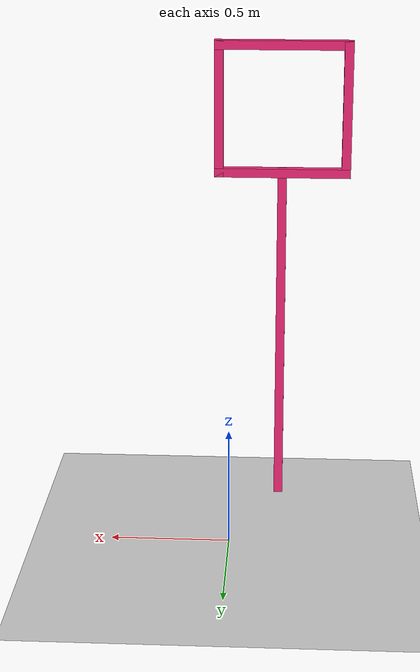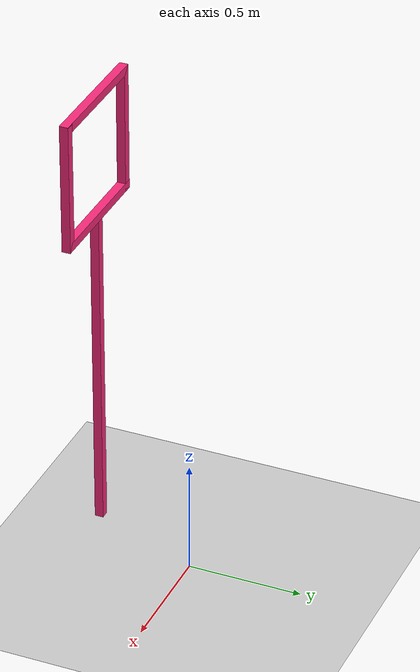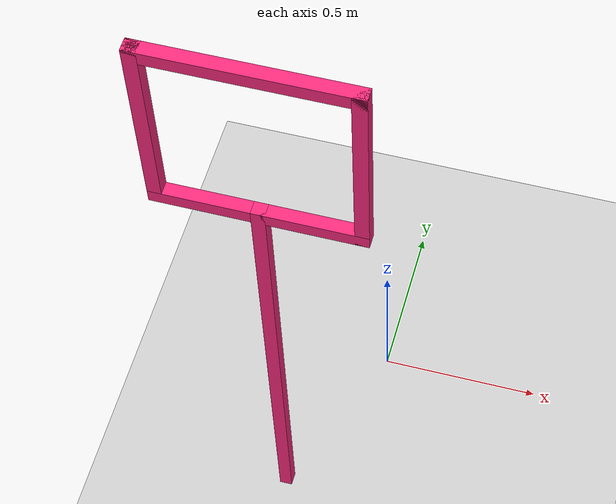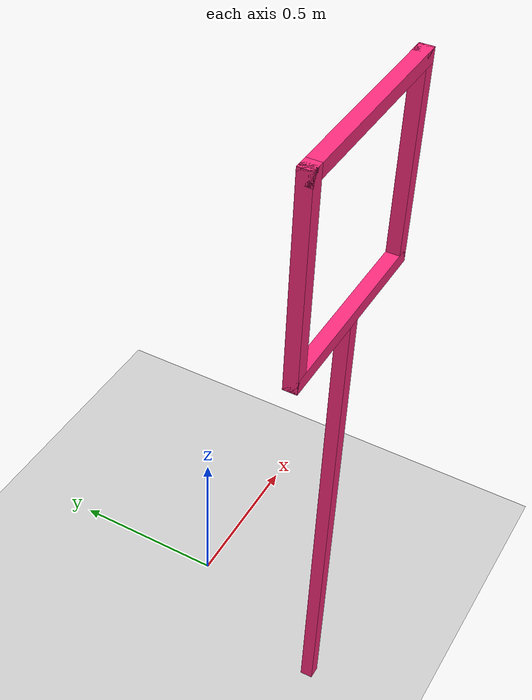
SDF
<sdf version="1.7">
 <world name="default">
  <model name="ground_plane">
   <static>1</static>
   <link name="link">
    <collision name="collision">
     <geometry><plane><normal>0 0 1</normal><size>100 100</size></plane></geometry>
     <surface><friction><ode><mu>100</mu><mu2>50</mu2></ode></friction></surface>
    </collision>
    <visual name="visual">
     <cast_shadows>0</cast_shadows>
     <geometry><plane><normal>0 0 1</normal><size>100 100</size></plane></geometry>
     <material>
      <script><uri>file://media/materials/scripts/gazebo.material</uri><name>Gazebo/Grey</name></script>
     </material>
    </visual>
   </link>
  </model>
  <model name="small_gate_12">
   <link name="rod">
    <pose>0 0 0.75 0 -0 0</pose>
    <inertial>
     <mass>1</mass>
     <inertia>
      <ixx>0.166667</ixx>
      <ixy>0</ixy>
      <ixz>0</ixz>
      <iyy>0.166667</iyy>
      <iyz>0</iyz>
      <izz>0.166667</izz>
     </inertia>
    </inertial>
    <visual name="visual">
     <geometry><box><size>0.0381 0.0381 1.5</size></box></geometry>
     <material>
      <shader type="vertex"><normal_map>__default__</normal_map></shader>
      <ambient>0.978 0.164 0.484 1</ambient>
      <diffuse>0.978 0.164 0.484 1</diffuse>
      <specular>0.01 0.01 0.01 1</specular>
      <emissive>0 0 0 1</emissive>
     </material>
    </visual>
    <collision name="collision">
     <geometry><box><size>0.0381 0.0381 1.5</size></box></geometry>
     <surface>
      <friction>
       <ode><mu>1</mu><mu2>1</mu2><fdir1>0 0 0</fdir1><slip1>0</slip1><slip2>0</slip2></ode>
       <torsional>
        <coefficient>1</coefficient>
        <patch_radius>0</patch_radius>
        <surface_radius>0</surface_radius>
        <use_patch_radius>1</use_patch_radius>
        <ode><slip>0</slip></ode>
       </torsional>
      </friction>
      <bounce><restitution_coefficient>0</restitution_coefficient><threshold>1e+06</threshold></bounce>
      <contact>
       <collide_without_contact>0</collide_without_contact>
       <collide_without_contact_bitmask>1</collide_without_contact_bitmask>
       <collide_bitmask>1</collide_bitmask>
       <ode>
        <soft_cfm>0</soft_cfm>
        <soft_erp>0.2</soft_erp>
        <kp>1e+13</kp>
        <kd>1</kd>
        <max_vel>0.01</max_vel>
        <min_depth>0</min_depth>
       </ode>
       <bullet>
        <split_impulse>1</split_impulse>
        <split_impulse_penetration_threshold>-0.01</split_impulse_penetration_threshold>
        <soft_cfm>0</soft_cfm>
        <soft_erp>0.2</soft_erp>
        <kp>1e+13</kp>
        <kd>1</kd>
       </bullet>
      </contact>
     </surface>
    </collision>
   </link>
   <link name="top_edge">
    <pose>0 0 2.01905 0 -0 0</pose>
    <inertial>
     <mass>1</mass>
     <inertia>
      <ixx>0.166667</ixx>
      <ixy>0</ixy>
      <ixz>0</ixz>
      <iyy>0.166667</iyy>
      <iyz>0</iyz>
      <izz>0.166667</izz>
     </inertia>
    </inertial>
    <visual name="visual">
     <geometry><box><size>0.5762 0.0381 0.0381</size></box></geometry>
     <material>
      <shader type="vertex"><normal_map>__default__</normal_map></shader>
      <ambient>0.978 0.164 0.484 1</ambient>
      <diffuse>0.978 0.164 0.484 1</diffuse>
      <specular>0.01 0.01 0.01 1</specular>
      <emissive>0 0 0 1</emissive>
     </material>
    </visual>
    <collision name="collision">
     <geometry><box><size>0.5762 0.0381 0.0381</size></box></geometry>
     <surface>
      <friction>
       <ode><mu>1</mu><mu2>1</mu2><fdir1>0 0 0</fdir1><slip1>0</slip1><slip2>0</slip2></ode>
       <torsional>
        <coefficient>1</coefficient>
        <patch_radius>0</patch_radius>
        <surface_radius>0</surface_radius>
        <use_patch_radius>1</use_patch_radius>
        <ode><slip>0</slip></ode>
       </torsional>
      </friction>
      <bounce><restitution_coefficient>0</restitution_coefficient><threshold>1e+06</threshold></bounce>
      <contact>
       <collide_without_contact>0</collide_without_contact>
       <collide_without_contact_bitmask>1</collide_without_contact_bitmask>
       <collide_bitmask>1</collide_bitmask>
       <ode>
        <soft_cfm>0</soft_cfm>
        <soft_erp>0.2</soft_erp>
        <kp>1e+13</kp>
        <kd>1</kd>
        <max_vel>0.01</max_vel>
        <min_depth>0</min_depth>
       </ode>
       <bullet>
        <split_impulse>1</split_impulse>
        <split_impulse_penetration_threshold>-0.01</split_impulse_penetration_threshold>
        <soft_cfm>0</soft_cfm>
        <soft_erp>0.2</soft_erp>
        <kp>1e+13</kp>
        <kd>1</kd>
       </bullet>
      </contact>
     </surface>
    </collision>
   </link>
   <link name="bottom_edge">
    <pose>0 0 1.48095 0 -0 0</pose>
    <inertial>
     <mass>1</mass>
     <inertia>
      <ixx>0.166667</ixx>
      <ixy>0</ixy>
      <ixz>0</ixz>
      <iyy>0.166667</iyy>
      <iyz>0</iyz>
      <izz>0.166667</izz>
     </inertia>
    </inertial>
    <visual name="visual">
     <geometry><box><size>0.5762 0.0381 0.0381</size></box></geometry>
     <material>
      <shader type="vertex"><normal_map>__default__</normal_map></shader>
      <ambient>0.978 0.164 0.484 1</ambient>
      <diffuse>0.978 0.164 0.484 1</diffuse>
      <specular>0.01 0.01 0.01 1</specular>
      <emissive>0 0 0 1</emissive>
     </material>
    </visual>
    <collision name="collision">
     <geometry><box><size>0.5762 0.0381 0.0381</size></box></geometry>
     <surface>
      <friction>
       <ode><mu>1</mu><mu2>1</mu2><fdir1>0 0 0</fdir1><slip1>0</slip1><slip2>0</slip2></ode>
       <torsional>
        <coefficient>1</coefficient>
        <patch_radius>0</patch_radius>
        <surface_radius>0</surface_radius>
        <use_patch_radius>1</use_patch_radius>
        <ode><slip>0</slip></ode>
       </torsional>
      </friction>
      <bounce><restitution_coefficient>0</restitution_coefficient><threshold>1e+06</threshold></bounce>
      <contact>
       <collide_without_contact>0</collide_without_contact>
       <collide_without_contact_bitmask>1</collide_without_contact_bitmask>
       <collide_bitmask>1</collide_bitmask>
       <ode>
        <soft_cfm>0</soft_cfm>
        <soft_erp>0.2</soft_erp>
        <kp>1e+13</kp>
        <kd>1</kd>
        <max_vel>0.01</max_vel>
        <min_depth>0</min_depth>
       </ode>
       <bullet>
        <split_impulse>1</split_impulse>
        <split_impulse_penetration_threshold>-0.01</split_impulse_penetration_threshold>
        <soft_cfm>0</soft_cfm>
        <soft_erp>0.2</soft_erp>
        <kp>1e+13</kp>
        <kd>1</kd>
       </bullet>
      </contact>
     </surface>
    </collision>
   </link>
   <link name="left_edge">
    <pose>-0.26905 0 1.75 0 -0 0</pose>
    <inertial>
     <mass>1</mass>
     <inertia>
      <ixx>0.166667</ixx>
      <ixy>0</ixy>
      <ixz>0</ixz>
      <iyy>0.166667</iyy>
      <iyz>0</iyz>
      <izz>0.166667</izz>
     </inertia>
    </inertial>
    <visual name="visual">
     <geometry><box><size>0.0381 0.0381 0.5762</size></box></geometry>
     <material>
      <shader type="vertex"><normal_map>__default__</normal_map></shader>
      <ambient>0.978 0.164 0.484 1</ambient>
      <diffuse>0.978 0.164 0.484 1</diffuse>
      <specular>0.01 0.01 0.01 1</specular>
      <emissive>0 0 0 1</emissive>
     </material>
    </visual>
    <collision name="collision">
     <geometry><box><size>0.0381 0.0381 0.5762</size></box></geometry>
     <surface>
      <friction>
       <ode><mu>1</mu><mu2>1</mu2><fdir1>0 0 0</fdir1><slip1>0</slip1><slip2>0</slip2></ode>
       <torsional>
        <coefficient>1</coefficient>
        <patch_radius>0</patch_radius>
        <surface_radius>0</surface_radius>
        <use_patch_radius>1</use_patch_radius>
        <ode><slip>0</slip></ode>
       </torsional>
      </friction>
      <bounce><restitution_coefficient>0</restitution_coefficient><threshold>1e+06</threshold></bounce>
      <contact>
       <collide_without_contact>0</collide_without_contact>
       <collide_without_contact_bitmask>1</collide_without_contact_bitmask>
       <collide_bitmask>1</collide_bitmask>
       <ode>
        <soft_cfm>0</soft_cfm>
        <soft_erp>0.2</soft_erp>
        <kp>1e+13</kp>
        <kd>1</kd>
        <max_vel>0.01</max_vel>
        <min_depth>0</min_depth>
       </ode>
       <bullet>
        <split_impulse>1</split_impulse>
        <split_impulse_penetration_threshold>-0.01</split_impulse_penetration_threshold>
        <soft_cfm>0</soft_cfm>
        <soft_erp>0.2</soft_erp>
        <kp>1e+13</kp>
        <kd>1</kd>
       </bullet>
      </contact>
     </surface>
    </collision>
   </link>
   <link name="right_edge">
    <pose>0.26905 0 1.75 0 -0 0</pose>
    <inertial>
     <mass>1</mass>
     <inertia>
      <ixx>0.166667</ixx>
      <ixy>0</ixy>
      <ixz>0</ixz>
      <iyy>0.166667</iyy>
      <iyz>0</iyz>
      <izz>0.166667</izz>
     </inertia>
    </inertial>
    <visual name="visual">
     <geometry><box><size>0.0381 0.0381 0.5762</size></box></geometry>
     <material>
      <shader type="vertex"><normal_map>__default__</normal_map></shader>
      <ambient>0.978 0.164 0.484 1</ambient>
      <diffuse>0.978 0.164 0.484 1</diffuse>
      <specular>0.01 0.01 0.01 1</specular>
      <emissive>0 0 0 1</emissive>
     </material>
    </visual>
    <collision name="collision">
     <geometry><box><size>0.0381 0.0381 0.5762</size></box></geometry>
     <surface>
      <friction>
       <ode><mu>1</mu><mu2>1</mu2><fdir1>0 0 0</fdir1><slip1>0</slip1><slip2>0</slip2></ode>
       <torsional>
        <coefficient>1</coefficient>
        <patch_radius>0</patch_radius>
        <surface_radius>0</surface_radius>
        <use_patch_radius>1</use_patch_radius>
        <ode><slip>0</slip></ode>
       </torsional>
      </friction>
      <bounce><restitution_coefficient>0</restitution_coefficient><threshold>1e+06</threshold></bounce>
      <contact>
       <collide_without_contact>0</collide_without_contact>
       <collide_without_contact_bitmask>1</collide_without_contact_bitmask>
       <collide_bitmask>1</collide_bitmask>
       <ode>
        <soft_cfm>0</soft_cfm>
        <soft_erp>0.2</soft_erp>
        <kp>1e+13</kp>
        <kd>1</kd>
        <max_vel>0.01</max_vel>
        <min_depth>0</min_depth>
       </ode>
       <bullet>
        <split_impulse>1</split_impulse>
        <split_impulse_penetration_threshold>-0.01</split_impulse_penetration_threshold>
        <soft_cfm>0</soft_cfm>
        <soft_erp>0.2</soft_erp>
        <kp>1e+13</kp>
        <kd>1</kd>
       </bullet>
      </contact>
     </surface>
    </collision>
   </link>
   <static>1</static>
   <pose>-0.2 -0.5 0 0 -0 0</pose>
  </model>
  <model name="asphalt_plane">
   <static>1</static>
   <link name="link">
    <collision name="collision"><geometry><box><size>200 200 0.1</size></box></geometry></collision>
    <visual name="visual">
     <cast_shadows>0</cast_shadows>
     <transparency>1</transparency>
     <geometry><box><size>200 200 0.1</size></box></geometry>
     <material>
      <script>
       <uri>model://asphalt_plane/materials/scripts</uri>
       <uri>model://asphalt_plane/materials/textures</uri>
       <name>vrc/asphalt</name>
      </script>
     </material>
    </visual>
   </link>
   <pose>3.87759 -1.81498 3.8 0 -0 0</pose>
  </model>
  <model name="asphalt_plane">
   <static>1</static>
   <link name="link">
    <collision name="collision"><geometry><box><size>200 200 0.1</size></box></geometry></collision>
    <visual name="visual">
     <cast_shadows>0</cast_shadows>
     <transparency>1</transparency>
     <geometry><box><size>200 200 0.1</size></box></geometry>
     <material>
      <script>
       <uri>model://asphalt_plane/materials/scripts</uri>
       <uri>model://asphalt_plane/materials/textures</uri>
       <name>vrc/asphalt</name>
      </script>
     </material>
    </visual>
   </link>
   <pose>3.87759 -1.81498 3.8 0 -0 0</pose>
  </model>
 </world>
</sdf>
